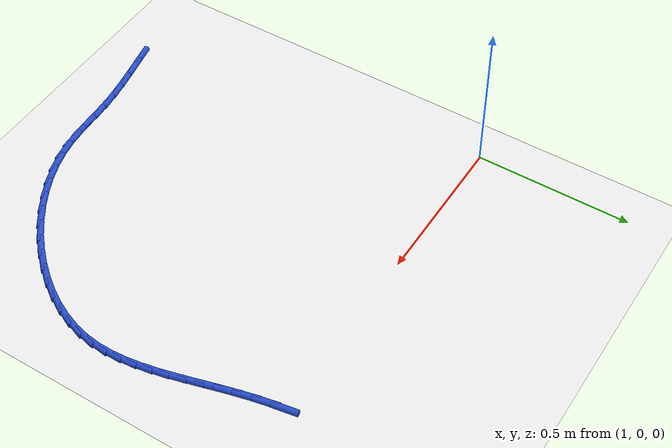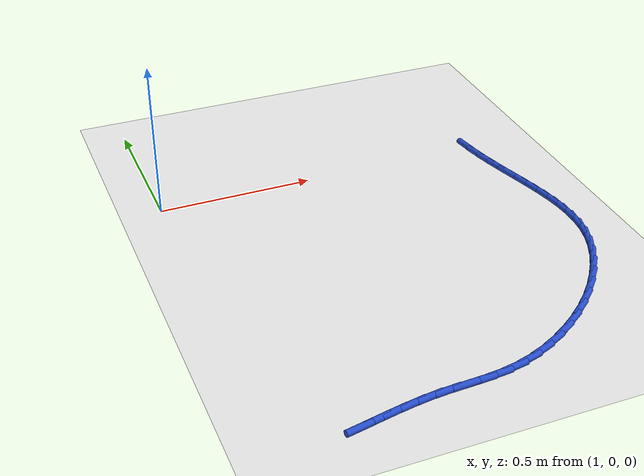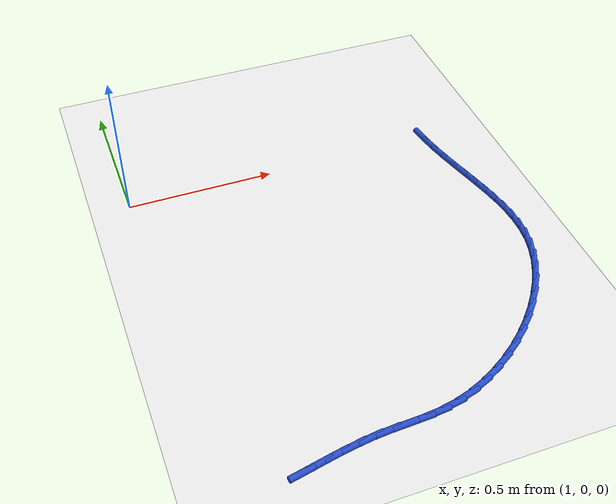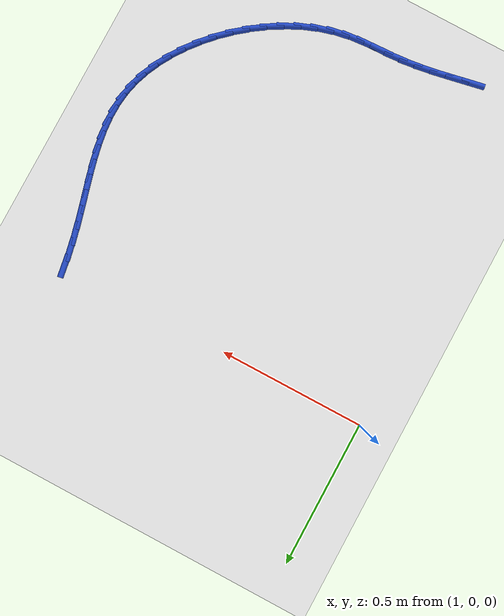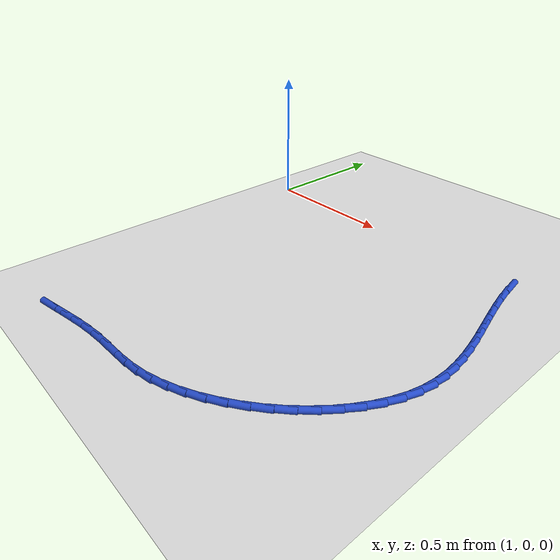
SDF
<sdf version="1.6">
 <world name="default">
  <model name="ground_plane">
   <static>1</static>
   <link name="link">
    <collision name="collision">
     <geometry><plane><normal>0 0 1</normal><size>100 100</size></plane></geometry>
     <surface><friction><ode><mu>100</mu><mu2>50</mu2></ode></friction></surface>
    </collision>
    <visual name="visual">
     <cast_shadows>0</cast_shadows>
     <geometry><plane><normal>0 0 1</normal><size>100 100</size></plane></geometry>
     <material>
      <script><uri>file://media/materials/scripts/gazebo.material</uri><name>Gazebo/WhiteGlow</name></script>
     </material>
    </visual>
   </link>
  </model>
  <model name="line">
   <link name="link_69">
    <pose>2.0856318841345827 -0.0016073894887815349 0.01 0 1.57 -1.4075814081429268</pose>
    <collision name="collision">
     <geometry><cylinder><radius>0.01</radius><length>0.08</length></cylinder></geometry>
    </collision>
    <visual name="visual">
     <material>
      <script><name>Gazebo/Blue</name><uri>file://media/materials/scripts/gazebo.material</uri></script>
     </material>
     <geometry><cylinder><radius>0.01</radius><length>0.08</length></cylinder></geometry>
    </visual>
   </link>
   <link name="link_70">
    <pose>2.094740002554017 -0.056915428157553814 0.01 0 1.57 -1.3636969188109513</pose>
    <collision name="collision">
     <geometry><cylinder><radius>0.01</radius><length>0.08</length></cylinder></geometry>
    </collision>
    <visual name="visual">
     <material>
      <script><name>Gazebo/Blue</name><uri>file://media/materials/scripts/gazebo.material</uri></script>
     </material>
     <geometry><cylinder><radius>0.01</radius><length>0.08</length></cylinder></geometry>
    </visual>
   </link>
   <link name="link_71">
    <pose>2.1060449470355493 -0.1107198156861699 0.01 0 1.57 -1.331576925702755</pose>
    <collision name="collision">
     <geometry><cylinder><radius>0.01</radius><length>0.08</length></cylinder></geometry>
    </collision>
    <visual name="visual">
     <material>
      <script><name>Gazebo/Blue</name><uri>file://media/materials/scripts/gazebo.material</uri></script>
     </material>
     <geometry><cylinder><radius>0.01</radius><length>0.08</length></cylinder></geometry>
    </visual>
   </link>
   <link name="link_72">
    <pose>2.118836110101896 -0.16316636342960597 0.01 0 1.57 -1.3119397901416923</pose>
    <collision name="collision">
     <geometry><cylinder><radius>0.01</radius><length>0.08</length></cylinder></geometry>
    </collision>
    <visual name="visual">
     <material>
      <script><name>Gazebo/Blue</name><uri>file://media/materials/scripts/gazebo.material</uri></script>
     </material>
     <geometry><cylinder><radius>0.01</radius><length>0.08</length></cylinder></geometry>
    </visual>
   </link>
   <link name="link_73">
    <pose>2.132402884275775 -0.21440088274283864 0.01 0 1.57 -1.305481188377382</pose>
    <collision name="collision">
     <geometry><cylinder><radius>0.01</radius><length>0.08</length></cylinder></geometry>
    </collision>
    <visual name="visual">
     <material>
      <script><name>Gazebo/Blue</name><uri>file://media/materials/scripts/gazebo.material</uri></script>
     </material>
     <geometry><cylinder><radius>0.01</radius><length>0.08</length></cylinder></geometry>
    </visual>
   </link>
   <link name="link_74">
    <pose>2.1460346620799036 -0.2645691849808421 0.01 0 1.57 -1.312975108120752</pose>
    <collision name="collision">
     <geometry><cylinder><radius>0.01</radius><length>0.08</length></cylinder></geometry>
    </collision>
    <visual name="visual">
     <material>
      <script><name>Gazebo/Blue</name><uri>file://media/materials/scripts/gazebo.material</uri></script>
     </material>
     <geometry><cylinder><radius>0.01</radius><length>0.08</length></cylinder></geometry>
    </visual>
   </link>
   <link name="link_75">
    <pose>2.1590208360369987 -0.3138170814985928 0.01 0 1.57 -1.3353221530514197</pose>
    <collision name="collision">
     <geometry><cylinder><radius>0.01</radius><length>0.08</length></cylinder></geometry>
    </collision>
    <visual name="visual">
     <material>
      <script><name>Gazebo/Blue</name><uri>file://media/materials/scripts/gazebo.material</uri></script>
     </material>
     <geometry><cylinder><radius>0.01</radius><length>0.08</length></cylinder></geometry>
    </visual>
   </link>
   <link name="link_76">
    <pose>2.1706507986697767 -0.3622903836510667 0.01 0 1.57 -1.3735165291514835</pose>
    <collision name="collision">
     <geometry><cylinder><radius>0.01</radius><length>0.08</length></cylinder></geometry>
    </collision>
    <visual name="visual">
     <material>
      <script><name>Gazebo/Blue</name><uri>file://media/materials/scripts/gazebo.material</uri></script>
     </material>
     <geometry><cylinder><radius>0.01</radius><length>0.08</length></cylinder></geometry>
    </visual>
   </link>
   <link name="link_77">
    <pose>2.180213942500956 -0.4101349027932394 0.01 0 1.57 -1.4284899650743148</pose>
    <collision name="collision">
     <geometry><cylinder><radius>0.01</radius><length>0.08</length></cylinder></geometry>
    </collision>
    <visual name="visual">
     <material>
      <script><name>Gazebo/Blue</name><uri>file://media/materials/scripts/gazebo.material</uri></script>
     </material>
     <geometry><cylinder><radius>0.01</radius><length>0.08</length></cylinder></geometry>
    </visual>
   </link>
   <link name="link_78">
    <pose>2.1869996600532535 -0.4574964502800875 0.01 0 1.57 -1.5007838482883396</pose>
    <collision name="collision">
     <geometry><cylinder><radius>0.01</radius><length>0.08</length></cylinder></geometry>
    </collision>
    <visual name="visual">
     <material>
      <script><name>Gazebo/Blue</name><uri>file://media/materials/scripts/gazebo.material</uri></script>
     </material>
     <geometry><cylinder><radius>0.01</radius><length>0.08</length></cylinder></geometry>
    </visual>
   </link>
   <link name="link_79">
    <pose>2.1902973438493865 -0.5045208374665853 0.01 0 1.57 1.5515610529028898</pose>
    <collision name="collision">
     <geometry><cylinder><radius>0.01</radius><length>0.08</length></cylinder></geometry>
    </collision>
    <visual name="visual">
     <material>
      <script><name>Gazebo/Blue</name><uri>file://media/materials/scripts/gazebo.material</uri></script>
     </material>
     <geometry><cylinder><radius>0.01</radius><length>0.08</length></cylinder></geometry>
    </visual>
   </link>
   <link name="link_80">
    <pose>2.1893963864120716 -0.5513538757077093 0.01 0 1.57 1.4472459709850545</pose>
    <collision name="collision">
     <geometry><cylinder><radius>0.01</radius><length>0.08</length></cylinder></geometry>
    </collision>
    <visual name="visual">
     <material>
      <script><name>Gazebo/Blue</name><uri>file://media/materials/scripts/gazebo.material</uri></script>
     </material>
     <geometry><cylinder><radius>0.01</radius><length>0.08</length></cylinder></geometry>
    </visual>
   </link>
   <link name="link_81">
    <pose>2.183586180264026 -0.5981413763584353 0.01 0 1.57 1.3323057535082732</pose>
    <collision name="collision">
     <geometry><cylinder><radius>0.01</radius><length>0.08</length></cylinder></geometry>
    </collision>
    <visual name="visual">
     <material>
      <script><name>Gazebo/Blue</name><uri>file://media/materials/scripts/gazebo.material</uri></script>
     </material>
     <geometry><cylinder><radius>0.01</radius><length>0.08</length></cylinder></geometry>
    </visual>
   </link>
   <link name="link_82">
    <pose>2.172191057053798 -0.6450122291025298 0.01 0 1.57 1.2212035472784004</pose>
    <collision name="collision">
     <geometry><cylinder><radius>0.01</radius><length>0.08</length></cylinder></geometry>
    </collision>
    <visual name="visual">
     <material>
      <script><name>Gazebo/Blue</name><uri>file://media/materials/scripts/gazebo.material</uri></script>
     </material>
     <geometry><cylinder><radius>0.01</radius><length>0.08</length></cylinder></geometry>
    </visual>
   </link>
   <link name="link_83">
    <pose>2.155131343501097 -0.6918066720791854 0.01 0 1.57 1.1220010776406317</pose>
    <collision name="collision">
     <geometry><cylinder><radius>0.01</radius><length>0.08</length></cylinder></geometry>
    </collision>
    <visual name="visual">
     <material>
      <script><name>Gazebo/Blue</name><uri>file://media/materials/scripts/gazebo.material</uri></script>
     </material>
     <geometry><cylinder><radius>0.01</radius><length>0.08</length></cylinder></geometry>
    </visual>
   </link>
   <link name="link_84">
    <pose>2.13282674603196 -0.7381230845087361 0.01 0 1.57 1.0326982191746996</pose>
    <collision name="collision">
     <geometry><cylinder><radius>0.01</radius><length>0.08</length></cylinder></geometry>
    </collision>
    <visual name="visual">
     <material>
      <script><name>Gazebo/Blue</name><uri>file://media/materials/scripts/gazebo.material</uri></script>
     </material>
     <geometry><cylinder><radius>0.01</radius><length>0.08</length></cylinder></geometry>
    </visual>
   </link>
   <link name="link_85">
    <pose>2.105712397445014 -0.7835523743311427 0.01 0 1.57 0.9510670374426442</pose>
    <collision name="collision">
     <geometry><cylinder><radius>0.01</radius><length>0.08</length></cylinder></geometry>
    </collision>
    <visual name="visual">
     <material>
      <script><name>Gazebo/Blue</name><uri>file://media/materials/scripts/gazebo.material</uri></script>
     </material>
     <geometry><cylinder><radius>0.01</radius><length>0.08</length></cylinder></geometry>
    </visual>
   </link>
   <link name="link_86">
    <pose>2.07422343053889 -0.827685449486367 0.01 0 1.57 0.8750576720948557</pose>
    <collision name="collision">
     <geometry><cylinder><radius>0.01</radius><length>0.08</length></cylinder></geometry>
    </collision>
    <visual name="visual">
     <material>
      <script><name>Gazebo/Blue</name><uri>file://media/materials/scripts/gazebo.material</uri></script>
     </material>
     <geometry><cylinder><radius>0.01</radius><length>0.08</length></cylinder></geometry>
    </visual>
   </link>
   <link name="link_87">
    <pose>2.0387949781122168 -0.8701132179143712 0.01 0 1.57 0.802817614301631</pose>
    <collision name="collision">
     <geometry><cylinder><radius>0.01</radius><length>0.08</length></cylinder></geometry>
    </collision>
    <visual name="visual">
     <material>
      <script><name>Gazebo/Blue</name><uri>file://media/materials/scripts/gazebo.material</uri></script>
     </material>
     <geometry><cylinder><radius>0.01</radius><length>0.08</length></cylinder></geometry>
    </visual>
   </link>
   <link name="link_88">
    <pose>1.9998621729636246 -0.9104265875551155 0.01 0 1.57 0.7326579736064471</pose>
    <collision name="collision">
     <geometry><cylinder><radius>0.01</radius><length>0.08</length></cylinder></geometry>
    </collision>
    <visual name="visual">
     <material>
      <script><name>Gazebo/Blue</name><uri>file://media/materials/scripts/gazebo.material</uri></script>
     </material>
     <geometry><cylinder><radius>0.01</radius><length>0.08</length></cylinder></geometry>
    </visual>
   </link>
   <link name="link_89">
    <pose>1.9578601478917417 -0.9482164663485619 0.01 0 1.57 0.6629989145240549</pose>
    <collision name="collision">
     <geometry><cylinder><radius>0.01</radius><length>0.08</length></cylinder></geometry>
    </collision>
    <visual name="visual">
     <material>
      <script><name>Gazebo/Blue</name><uri>file://media/materials/scripts/gazebo.material</uri></script>
     </material>
     <geometry><cylinder><radius>0.01</radius><length>0.08</length></cylinder></geometry>
    </visual>
   </link>
   <link name="link_90">
    <pose>1.9132240356951984 -0.9830737622346718 0.01 0 1.57 0.592310059660404</pose>
    <collision name="collision">
     <geometry><cylinder><radius>0.01</radius><length>0.08</length></cylinder></geometry>
    </collision>
    <visual name="visual">
     <material>
      <script><name>Gazebo/Blue</name><uri>file://media/materials/scripts/gazebo.material</uri></script>
     </material>
     <geometry><cylinder><radius>0.01</radius><length>0.08</length></cylinder></geometry>
    </visual>
   </link>
   <link name="link_91">
    <pose>1.8663889691726228 -1.0145893831534074 0.01 0 1.57 0.5190539817031774</pose>
    <collision name="collision">
     <geometry><cylinder><radius>0.01</radius><length>0.08</length></cylinder></geometry>
    </collision>
    <visual name="visual">
     <material>
      <script><name>Gazebo/Blue</name><uri>file://media/materials/scripts/gazebo.material</uri></script>
     </material>
     <geometry><cylinder><radius>0.01</radius><length>0.08</length></cylinder></geometry>
    </visual>
   </link>
   <link name="link_92">
    <pose>1.817790081122646 -1.0423542370447292 0.01 0 1.57 0.44163930571838966</pose>
    <collision name="collision">
     <geometry><cylinder><radius>0.01</radius><length>0.08</length></cylinder></geometry>
    </collision>
    <visual name="visual">
     <material>
      <script><name>Gazebo/Blue</name><uri>file://media/materials/scripts/gazebo.material</uri></script>
     </material>
     <geometry><cylinder><radius>0.01</radius><length>0.08</length></cylinder></geometry>
    </visual>
   </link>
   <link name="link_93">
    <pose>1.7678625043438965 -1.0659592318485993 0.01 0 1.57 0.3583931471357222</pose>
    <collision name="collision">
     <geometry><cylinder><radius>0.01</radius><length>0.08</length></cylinder></geometry>
    </collision>
    <visual name="visual">
     <material>
      <script><name>Gazebo/Blue</name><uri>file://media/materials/scripts/gazebo.material</uri></script>
     </material>
     <geometry><cylinder><radius>0.01</radius><length>0.08</length></cylinder></geometry>
    </visual>
   </link>
   <link name="link_94">
    <pose>1.717041371635004 -1.084995275504979 0.01 0 1.57 0.26757054501737454</pose>
    <collision name="collision">
     <geometry><cylinder><radius>0.01</radius><length>0.08</length></cylinder></geometry>
    </collision>
    <visual name="visual">
     <material>
      <script><name>Gazebo/Blue</name><uri>file://media/materials/scripts/gazebo.material</uri></script>
     </material>
     <geometry><cylinder><radius>0.01</radius><length>0.08</length></cylinder></geometry>
    </visual>
   </link>
   <link name="link_95">
    <pose>1.6657618157945968 -1.0990532759538303 0.01 0 1.57 0.16890070586597825</pose>
    <collision name="collision">
     <geometry><cylinder><radius>0.01</radius><length>0.08</length></cylinder></geometry>
    </collision>
    <visual name="visual">
     <material>
      <script><name>Gazebo/Blue</name><uri>file://media/materials/scripts/gazebo.material</uri></script>
     </material>
     <geometry><cylinder><radius>0.01</radius><length>0.08</length></cylinder></geometry>
    </visual>
   </link>
   <link name="link_96">
    <pose>1.6144396789494335 -1.1078050012620089 0.01 0 1.57 0.08680193625681829</pose>
    <collision name="collision">
     <geometry><cylinder><radius>0.01</radius><length>0.08</length></cylinder></geometry>
    </collision>
    <visual name="visual">
     <material>
      <script><name>Gazebo/Blue</name><uri>file://media/materials/scripts/gazebo.material</uri></script>
     </material>
     <geometry><cylinder><radius>0.01</radius><length>0.08</length></cylinder></geometry>
    </visual>
   </link>
   <link name="link_97">
    <pose>1.5631700977379281 -1.1122665110096732 0.01 0 1.57 0.044642563228342536</pose>
    <collision name="collision">
     <geometry><cylinder><radius>0.01</radius><length>0.08</length></cylinder></geometry>
    </collision>
    <visual name="visual">
     <material>
      <script><name>Gazebo/Blue</name><uri>file://media/materials/scripts/gazebo.material</uri></script>
     </material>
     <geometry><cylinder><radius>0.01</radius><length>0.08</length></cylinder></geometry>
    </visual>
   </link>
   <link name="link_98">
    <pose>1.5117838306062736 -1.1145620508636698 0.01 0 1.57 0.04422227042469715</pose>
    <collision name="collision">
     <geometry><cylinder><radius>0.01</radius><length>0.08</length></cylinder></geometry>
    </collision>
    <visual name="visual">
     <material>
      <script><name>Gazebo/Blue</name><uri>file://media/materials/scripts/gazebo.material</uri></script>
     </material>
     <geometry><cylinder><radius>0.01</radius><length>0.08</length></cylinder></geometry>
    </visual>
   </link>
   <link name="link_99">
    <pose>1.4601037426898358 -1.11684895264353 0.01 0 1.57 0.08372671574556068</pose>
    <collision name="collision">
     <geometry><cylinder><radius>0.01</radius><length>0.08</length></cylinder></geometry>
    </collision>
    <visual name="visual">
     <material>
      <script><name>Gazebo/Blue</name><uri>file://media/materials/scripts/gazebo.material</uri></script>
     </material>
     <geometry><cylinder><radius>0.01</radius><length>0.08</length></cylinder></geometry>
    </visual>
   </link>
   <link name="link_100">
    <pose>1.4079600558202627 -1.1212250026819746 0.01 0 1.57 0.1350075090730753</pose>
    <collision name="collision">
     <geometry><cylinder><radius>0.01</radius><length>0.08</length></cylinder></geometry>
    </collision>
    <visual name="visual">
     <material>
      <script><name>Gazebo/Blue</name><uri>file://media/materials/scripts/gazebo.material</uri></script>
     </material>
     <geometry><cylinder><radius>0.01</radius><length>0.08</length></cylinder></geometry>
    </visual>
   </link>
   <link name="link_101">
    <pose>1.3553581661652752 -1.1283701170177969 0.01 0 1.57 0.17132783861709228</pose>
    <collision name="collision">
     <geometry><cylinder><radius>0.01</radius><length>0.08</length></cylinder></geometry>
    </collision>
    <visual name="visual">
     <material>
      <script><name>Gazebo/Blue</name><uri>file://media/materials/scripts/gazebo.material</uri></script>
     </material>
     <geometry><cylinder><radius>0.01</radius><length>0.08</length></cylinder></geometry>
    </visual>
   </link>
   <link name="link_102">
    <pose>1.3024820267082713 -1.1375189634279543 0.01 0 1.57 0.192498432490028</pose>
    <collision name="collision">
     <geometry><cylinder><radius>0.01</radius><length>0.08</length></cylinder></geometry>
    </collision>
    <visual name="visual">
     <material>
      <script><name>Gazebo/Blue</name><uri>file://media/materials/scripts/gazebo.material</uri></script>
     </material>
     <geometry><cylinder><radius>0.01</radius><length>0.08</length></cylinder></geometry>
    </visual>
   </link>
   <link name="link_103">
    <pose>1.2495236237024194 -1.1478411879811536 0.01 0 1.57 0.19913272978745294</pose>
    <collision name="collision">
     <geometry><cylinder><radius>0.01</radius><length>0.08</length></cylinder></geometry>
    </collision>
    <visual name="visual">
     <material>
      <script><name>Gazebo/Blue</name><uri>file://media/materials/scripts/gazebo.material</uri></script>
     </material>
     <geometry><cylinder><radius>0.01</radius><length>0.08</length></cylinder></geometry>
    </visual>
   </link>
   <link name="link_104">
    <pose>1.1966749434008883 -1.1585064367461044 0.01 0 1.57 0.19132271940498405</pose>
    <collision name="collision">
     <geometry><cylinder><radius>0.01</radius><length>0.08</length></cylinder></geometry>
    </collision>
    <visual name="visual">
     <material>
      <script><name>Gazebo/Blue</name><uri>file://media/materials/scripts/gazebo.material</uri></script>
     </material>
     <geometry><cylinder><radius>0.01</radius><length>0.08</length></cylinder></geometry>
    </visual>
   </link>
  </model>
 </world>
</sdf>
